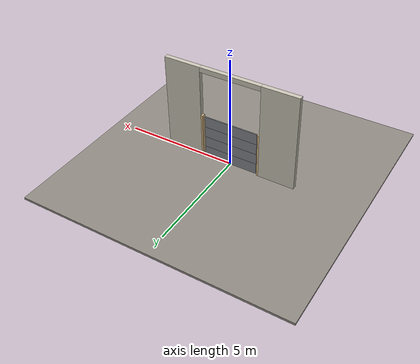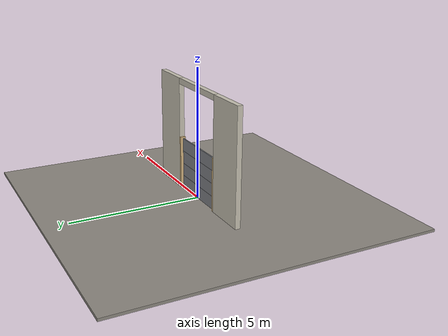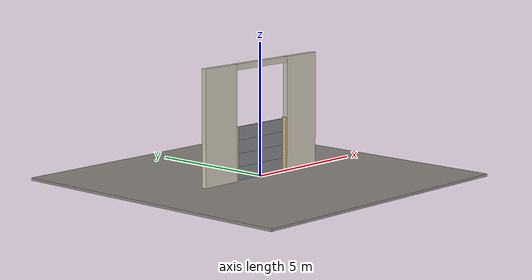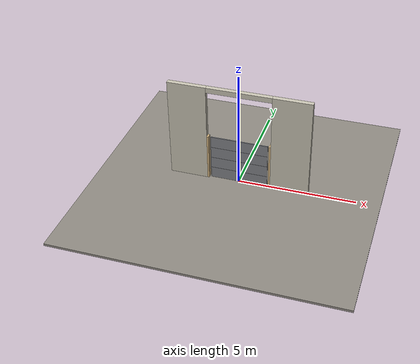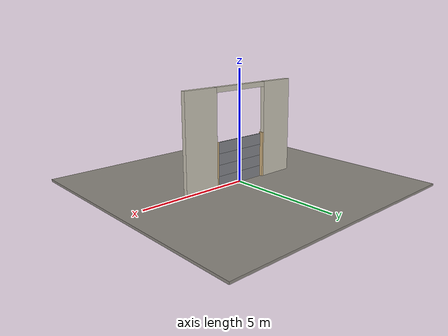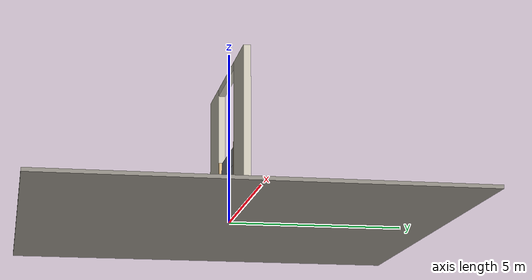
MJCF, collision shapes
<?xml version="1.0" ?>
<mujoco model="db0605_garage_sectional_minimal">
  <compiler angle="radian" meshdir="../../hardware" texturedir="../../textures" autolimits="true" inertiafromgeom="false"/>
  <option timestep="0.002" integrator="implicitfast" cone="elliptic" impratio="10" noslip_iterations="3">
    <flag multiccd="enable"/>
  </option>
  <size memory="16M"/>
  <default>
    <geom condim="4" solref="0.005 1" solimp="0.95 0.99 0.001"/>
    <joint solreflimit="0.005 1" solimplimit="0.95 0.99 0.001"/>
    <tendon solreflimit="0.005 1"/>
    <equality solref="0.002 1"/>
  </default>
  <visual>
    <headlight ambient="0.4 0.4 0.4" diffuse="0.7 0.7 0.7" specular="0.2 0.2 0.2"/>
    <quality shadowsize="4096"/>
    <map znear="0.01" zfar="60"/>
  </visual>
  <asset>
    <mesh name="lever_01c630149d" file="lever_01c630149d.obj"/>
    <material name="mat_floor" rgba="0.55 0.53 0.5 1" specular="0.2" shininess="0.15" reflectance="0"/>
    <material name="mat_wall" rgba="0.78 0.76 0.7 1" specular="0.2" shininess="0.1" reflectance="0"/>
    <material name="mat_frame" rgba="0.82 0.7 0.5 1" specular="0.2" shininess="0.45" reflectance="0"/>
    <material name="mat_track" rgba="0.65 0.66 0.68 1" specular="0.74" shininess="0.5" reflectance="0.36"/>
    <material name="mat_section_0" rgba="0.5 0.51 0.53 1" specular="0.23" shininess="0.46" reflectance="0.02"/>
    <material name="mat_section_0_panel" rgba="0.46 0.469 0.488 1" specular="0.23" shininess="0.46" reflectance="0.02"/>
    <material name="mat_section_1" rgba="0.5 0.51 0.53 1" specular="0.23" shininess="0.46" reflectance="0.02"/>
    <material name="mat_section_1_panel" rgba="0.46 0.469 0.488 1" specular="0.23" shininess="0.46" reflectance="0.02"/>
    <material name="mat_hinge_line" rgba="0.2 0.2 0.2 1" specular="0.2" shininess="0.3" reflectance="0"/>
    <material name="mat_section_2" rgba="0.5 0.51 0.53 1" specular="0.23" shininess="0.46" reflectance="0.02"/>
    <material name="mat_section_2_panel" rgba="0.46 0.469 0.488 1" specular="0.23" shininess="0.46" reflectance="0.02"/>
    <material name="mat_section_3" rgba="0.5 0.51 0.53 1" specular="0.23" shininess="0.46" reflectance="0.02"/>
    <material name="mat_section_3_panel" rgba="0.46 0.469 0.488 1" specular="0.23" shininess="0.46" reflectance="0.02"/>
    <material name="mat_spring" rgba="0.55 0.56 0.58 1" specular="0.8" shininess="0.55" reflectance="0.4"/>
    <material name="mat_opener" rgba="0.05 0.05 0.05 1" specular="0.38" shininess="0.3" reflectance="0.12"/>
    <material name="mat_op_black_matte_metal" rgba="0.05 0.05 0.05 1" specular="0.38" shininess="0.3" reflectance="0.12"/>
    <material name="mat_trim" rgba="0.85 0.66 0.3 1" specular="0.8" shininess="0.75" reflectance="0.4"/>
    <material name="mat_lockbar" rgba="0.65 0.66 0.68 1" specular="0.74" shininess="0.5" reflectance="0.36"/>
    <material name="mat_slidelock" rgba="0.65 0.66 0.68 1" specular="0.74" shininess="0.5" reflectance="0.36"/>
    <texture name="skybox" type="skybox" builtin="gradient" rgb1="0.6 0.7 0.85" rgb2="0.9 0.92 0.95" width="256" height="256"/>
  </asset>
  <worldbody>
    <light name="sun" pos="1.5 -2.5 4" dir="-0.3 0.5 -0.8" directional="true" diffuse="0.8 0.8 0.8" specular="0.3 0.3 0.3" castshadow="true"/>
    <light name="fill" pos="-1.5 2.5 3" dir="0.3 -0.5 -0.7" directional="true" diffuse="0.35 0.35 0.4" castshadow="false"/>
    <camera name="robot_view" pos="0 -2.959375 1.853625" xyaxes="1 0 0 0 0.26963 0.962964" fovy="52"/>
    <camera name="far_view" pos="0 2.959375 1.853625" xyaxes="-1 0 0 0 -0.26963 0.962964" fovy="52"/>
    <camera name="iso" pos="2.249125 -2.485875 2.327125" xyaxes="0.741536 0.670913 0 -0.242917 0.268487 0.932151" fovy="46"/>
    <camera name="detail_handle" pos="0.2115 -1.1625 1.25" xyaxes="0.975133 0.221621 0 -0.065674 0.288965 0.955084" fovy="38"/>
    <geom name="floor" type="box" size="6 6 0.05" pos="0 0 -0.05" material="mat_floor" group="0" contype="1" conaffinity="1" friction="0.8 0.005 0.0001" density="2400"/>
    <geom name="wall_left" type="box" size="0.8175 0.1 2.175" pos="-2.1825 0 2.175" material="mat_wall" group="0" contype="1" conaffinity="1" friction="0.6 0.005 0.0001" density="800"/>
    <geom name="wall_right" type="box" size="0.8175 0.1 2.175" pos="2.1825 0 2.175" material="mat_wall" group="0" contype="1" conaffinity="1" friction="0.6 0.005 0.0001" density="800"/>
    <geom name="wall_header" type="box" size="1.365 0.1 0.11" pos="0 0 4.24" material="mat_wall" group="0" contype="1" conaffinity="1" friction="0.6 0.005 0.0001" density="800"/>
    <geom name="garage_jamb_l" type="box" size="0.04 0.1 1.025" pos="-1.325 0 1.025" material="mat_frame" group="0" contype="1" conaffinity="1" friction="0.6 0.005 0.0001" density="400"/>
    <geom name="garage_jamb_r" type="box" size="0.04 0.1 1.025" pos="1.325 0 1.025" material="mat_frame" group="0" contype="1" conaffinity="1" friction="0.6 0.005 0.0001" density="400"/>
    <site name="approach_point" pos="0 -2 0" quat="1 0 0 0" size="0.05" rgba="0.2 0.9 0.2 0.5" group="4"/>
    <site name="goal_point" pos="0 2 0" quat="1 0 0 0" size="0.05" rgba="0.2 0.9 0.2 0.5" group="4"/>
    <site name="door_plane_center" pos="0 0 1.025" quat="1 0 0 0" size="0.02" rgba="0.2 0.9 0.2 0.5" group="4"/>
    <body name="door" pos="0 0 0">
      <inertial pos="0 0 1.01" mass="52.987417" quat="0 0 0.707107 0.707107" diaginertia="17.671414033 26.297765557 43.951296337"/>
      <joint name="door_slide" type="slide" axis="0 0 1" limited="true" range="0 1.95" damping="4.6824" frictionloss="21.044286" stiffness="48.580327" springref="6.5" armature="0.5"/>
      <geom name="section_0_slab" type="box" size="1.22 0.0225 0.25" pos="0 0 0.26" material="mat_section_0" group="0" contype="1" conaffinity="1" friction="0.4 0.005 0.0001" density="1"/>
      <geom name="section_1_slab" type="box" size="1.22 0.0225 0.25" pos="0 0 0.76" material="mat_section_1" group="0" contype="1" conaffinity="1" friction="0.4 0.005 0.0001" density="1"/>
      <geom name="section_2_slab" type="box" size="1.22 0.0225 0.25" pos="0 0 1.26" material="mat_section_2" group="0" contype="1" conaffinity="1" friction="0.4 0.005 0.0001" density="1"/>
      <geom name="section_3_slab" type="box" size="1.22 0.0225 0.25" pos="0 0 1.76" material="mat_section_3" group="0" contype="1" conaffinity="1" friction="0.4 0.005 0.0001" density="1"/>
      <body name="t_handle" pos="0 0 0.9">
        <inertial pos="0 -0.051615 0" mass="0.254469" quat="1 0 0 0" diaginertia="0.000075558 0.000207252 0.000256627"/>
        <joint name="t_handle_hinge" type="hinge" axis="0 -1 0" limited="true" range="0 1.5708" damping="0.127804" frictionloss="0.028" stiffness="0.4" springref="-0.75" armature="0.01"/>
        <geom name="t_handle_t_n" type="mesh" mesh="lever_01c630149d" pos="0 -0.0225 0" quat="0.707107 0.707107 0 0" material="mat_op_black_matte_metal" group="1" contype="0" conaffinity="0" density="3000"/>
        <geom name="t_handle_t_col_n" type="box" size="0.055 0.008 0.008" pos="0 -0.0625 0" material="mat_op_black_matte_metal" group="3" contype="1" conaffinity="1" rgba="0.8 0.3 0.3 0.25" friction="0.6 0.005 0.0001" density="3000"/>
        <site name="t_handle_grip_n" pos="-0.0385 -0.0625 0" quat="1 0 0 0" size="0.012" rgba="0.2 0.9 0.2 0.5" group="4"/>
      </body>
    </body>
  </worldbody>
  <sensor>
    <jointpos name="door_slide_pos" joint="door_slide"/>
    <jointvel name="door_slide_vel" joint="door_slide"/>
    <jointpos name="t_handle_hinge_pos" joint="t_handle_hinge"/>
    <jointvel name="t_handle_hinge_vel" joint="t_handle_hinge"/>
  </sensor>
</mujoco>
